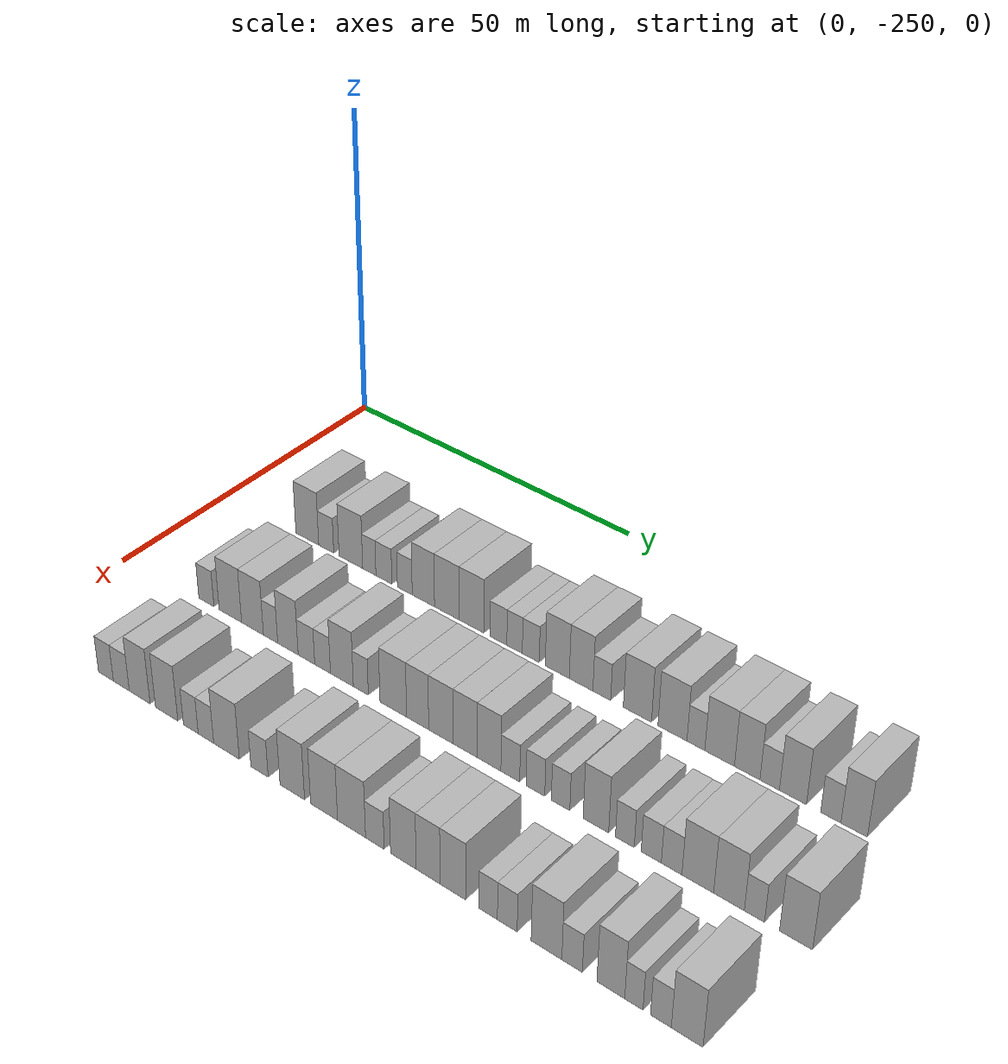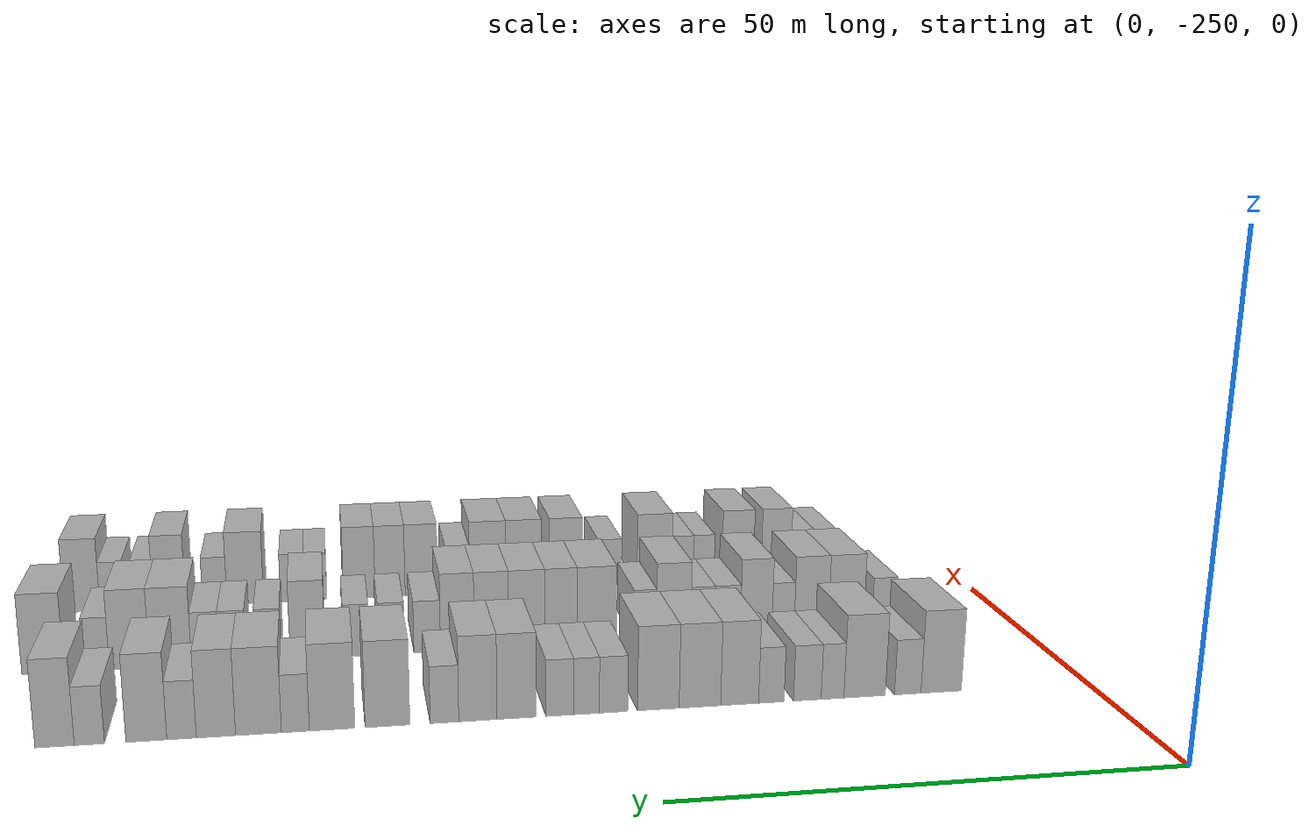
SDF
<sdf version="1.6">
 <world name="default">
  <model name="building_1">
   <static>1</static>
   <pose>25.0000 -233.8101 0 0.000000 0.000000 0.000000</pose>
   <link name="link">
    <pose>0 0 4.50 0 0 0</pose>
    <collision name="collision"><geometry><box><size>10.0000 4.3798 9.0000</size></box></geometry></collision>
    <visual name="visual">
     <cast_shadows>0</cast_shadows>
     <geometry><box><size>10.0000 4.3798 9.0000</size></box></geometry>
     <material>
      <script>
       <uri>model://HANNAS_wall/materials/scripts</uri>
       <uri>model://HANNAS_wall/materials/textures</uri>
       <name>vrc/HANNAS_wall</name>
      </script>
     </material>
    </visual>
   </link>
  </model>
  <model name="building_2">
   <static>1</static>
   <pose>25.0000 -230.1904 0 0.000000 0.000000 0.000000</pose>
   <link name="link">
    <pose>0 0 3.00 0 0 0</pose>
    <collision name="collision"><geometry><box><size>10.0000 2.8597 6.0000</size></box></geometry></collision>
    <visual name="visual">
     <cast_shadows>0</cast_shadows>
     <geometry><box><size>10.0000 2.8597 6.0000</size></box></geometry>
     <material>
      <script>
       <uri>model://HANNAS_wall/materials/scripts</uri>
       <uri>model://HANNAS_wall/materials/textures</uri>
       <name>vrc/HANNAS_wall</name>
      </script>
     </material>
    </visual>
   </link>
  </model>
  <model name="building_3">
   <static>1</static>
   <pose>25.0000 -225.5455 0 0.000000 0.000000 0.000000</pose>
   <link name="link">
    <pose>0 0 4.50 0 0 0</pose>
    <collision name="collision"><geometry><box><size>10.0000 4.4301 9.0000</size></box></geometry></collision>
    <visual name="visual">
     <cast_shadows>0</cast_shadows>
     <geometry><box><size>10.0000 4.4301 9.0000</size></box></geometry>
     <material>
      <script>
       <uri>model://HANNAS_wall/materials/scripts</uri>
       <uri>model://HANNAS_wall/materials/textures</uri>
       <name>vrc/HANNAS_wall</name>
      </script>
     </material>
    </visual>
   </link>
  </model>
  <model name="building_4">
   <static>1</static>
   <pose>25.0000 -222.1152 0 0.000000 0.000000 0.000000</pose>
   <link name="link">
    <pose>0 0 3.00 0 0 0</pose>
    <collision name="collision"><geometry><box><size>10.0000 2.4304 6.0000</size></box></geometry></collision>
    <visual name="visual">
     <cast_shadows>0</cast_shadows>
     <geometry><box><size>10.0000 2.4304 6.0000</size></box></geometry>
     <material>
      <script>
       <uri>model://HANNAS_wall/materials/scripts</uri>
       <uri>model://HANNAS_wall/materials/textures</uri>
       <name>vrc/HANNAS_wall</name>
      </script>
     </material>
    </visual>
   </link>
  </model>
  <model name="building_5">
   <static>1</static>
   <pose>25.0000 -219.4373 0 0.000000 0.000000 0.000000</pose>
   <link name="link">
    <pose>0 0 3.00 0 0 0</pose>
    <collision name="collision"><geometry><box><size>10.0000 2.9253 6.0000</size></box></geometry></collision>
    <visual name="visual">
     <cast_shadows>0</cast_shadows>
     <geometry><box><size>10.0000 2.9253 6.0000</size></box></geometry>
     <material>
      <script>
       <uri>model://HANNAS_wall/materials/scripts</uri>
       <uri>model://HANNAS_wall/materials/textures</uri>
       <name>vrc/HANNAS_wall</name>
      </script>
     </material>
    </visual>
   </link>
  </model>
  <model name="building_6">
   <static>1</static>
   <pose>25.0000 -215.6372 0 0.000000 0.000000 0.000000</pose>
   <link name="link">
    <pose>0 0 3.00 0 0 0</pose>
    <collision name="collision"><geometry><box><size>10.0000 2.6748 6.0000</size></box></geometry></collision>
    <visual name="visual">
     <cast_shadows>0</cast_shadows>
     <geometry><box><size>10.0000 2.6748 6.0000</size></box></geometry>
     <material>
      <script>
       <uri>model://HANNAS_wall/materials/scripts</uri>
       <uri>model://HANNAS_wall/materials/textures</uri>
       <name>vrc/HANNAS_wall</name>
      </script>
     </material>
    </visual>
   </link>
  </model>
  <model name="building_7">
   <static>1</static>
   <pose>25.0000 -212.3114 0 0.000000 0.000000 0.000000</pose>
   <link name="link">
    <pose>0 0 4.50 0 0 0</pose>
    <collision name="collision"><geometry><box><size>10.0000 3.9768 9.0000</size></box></geometry></collision>
    <visual name="visual">
     <cast_shadows>0</cast_shadows>
     <geometry><box><size>10.0000 3.9768 9.0000</size></box></geometry>
     <material>
      <script>
       <uri>model://HANNAS_wall/materials/scripts</uri>
       <uri>model://HANNAS_wall/materials/textures</uri>
       <name>vrc/HANNAS_wall</name>
      </script>
     </material>
    </visual>
   </link>
  </model>
  <model name="building_8">
   <static>1</static>
   <pose>25.0000 -208.1650 0 0.000000 0.000000 0.000000</pose>
   <link name="link">
    <pose>0 0 4.50 0 0 0</pose>
    <collision name="collision"><geometry><box><size>10.0000 4.3161 9.0000</size></box></geometry></collision>
    <visual name="visual">
     <cast_shadows>0</cast_shadows>
     <geometry><box><size>10.0000 4.3161 9.0000</size></box></geometry>
     <material>
      <script>
       <uri>model://HANNAS_wall/materials/scripts</uri>
       <uri>model://HANNAS_wall/materials/textures</uri>
       <name>vrc/HANNAS_wall</name>
      </script>
     </material>
    </visual>
   </link>
  </model>
  <model name="building_9">
   <static>1</static>
   <pose>25.0000 -203.8633 0 0.000000 0.000000 0.000000</pose>
   <link name="link">
    <pose>0 0 4.50 0 0 0</pose>
    <collision name="collision"><geometry><box><size>10.0000 4.2874 9.0000</size></box></geometry></collision>
    <visual name="visual">
     <cast_shadows>0</cast_shadows>
     <geometry><box><size>10.0000 4.2874 9.0000</size></box></geometry>
     <material>
      <script>
       <uri>model://HANNAS_wall/materials/scripts</uri>
       <uri>model://HANNAS_wall/materials/textures</uri>
       <name>vrc/HANNAS_wall</name>
      </script>
     </material>
    </visual>
   </link>
  </model>
  <model name="building_10">
   <static>1</static>
   <pose>25.0000 -199.2689 0 0.000000 0.000000 0.000000</pose>
   <link name="link">
    <pose>0 0 3.00 0 0 0</pose>
    <collision name="collision"><geometry><box><size>10.0000 2.9013 6.0000</size></box></geometry></collision>
    <visual name="visual">
     <cast_shadows>0</cast_shadows>
     <geometry><box><size>10.0000 2.9013 6.0000</size></box></geometry>
     <material>
      <script>
       <uri>model://HANNAS_wall/materials/scripts</uri>
       <uri>model://HANNAS_wall/materials/textures</uri>
       <name>vrc/HANNAS_wall</name>
      </script>
     </material>
    </visual>
   </link>
  </model>
  <model name="building_11">
   <static>1</static>
   <pose>25.0000 -196.5179 0 0.000000 0.000000 0.000000</pose>
   <link name="link">
    <pose>0 0 3.00 0 0 0</pose>
    <collision name="collision"><geometry><box><size>10.0000 2.6006 6.0000</size></box></geometry></collision>
    <visual name="visual">
     <cast_shadows>0</cast_shadows>
     <geometry><box><size>10.0000 2.6006 6.0000</size></box></geometry>
     <material>
      <script>
       <uri>model://HANNAS_wall/materials/scripts</uri>
       <uri>model://HANNAS_wall/materials/textures</uri>
       <name>vrc/HANNAS_wall</name>
      </script>
     </material>
    </visual>
   </link>
  </model>
  <model name="building_12">
   <static>1</static>
   <pose>25.0000 -193.8118 0 0.000000 0.000000 0.000000</pose>
   <link name="link">
    <pose>0 0 3.00 0 0 0</pose>
    <collision name="collision"><geometry><box><size>10.0000 2.8117 6.0000</size></box></geometry></collision>
    <visual name="visual">
     <cast_shadows>0</cast_shadows>
     <geometry><box><size>10.0000 2.8117 6.0000</size></box></geometry>
     <material>
      <script>
       <uri>model://HANNAS_wall/materials/scripts</uri>
       <uri>model://HANNAS_wall/materials/textures</uri>
       <name>vrc/HANNAS_wall</name>
      </script>
     </material>
    </visual>
   </link>
  </model>
  <model name="building_13">
   <static>1</static>
   <pose>25.0000 -189.4417 0 0.000000 0.000000 0.000000</pose>
   <link name="link">
    <pose>0 0 4.50 0 0 0</pose>
    <collision name="collision"><geometry><box><size>10.0000 3.9283 9.0000</size></box></geometry></collision>
    <visual name="visual">
     <cast_shadows>0</cast_shadows>
     <geometry><box><size>10.0000 3.9283 9.0000</size></box></geometry>
     <material>
      <script>
       <uri>model://HANNAS_wall/materials/scripts</uri>
       <uri>model://HANNAS_wall/materials/textures</uri>
       <name>vrc/HANNAS_wall</name>
      </script>
     </material>
    </visual>
   </link>
  </model>
  <model name="building_14">
   <static>1</static>
   <pose>25.0000 -185.5741 0 0.000000 0.000000 0.000000</pose>
   <link name="link">
    <pose>0 0 4.50 0 0 0</pose>
    <collision name="collision"><geometry><box><size>10.0000 3.8069 9.0000</size></box></geometry></collision>
    <visual name="visual">
     <cast_shadows>0</cast_shadows>
     <geometry><box><size>10.0000 3.8069 9.0000</size></box></geometry>
     <material>
      <script>
       <uri>model://HANNAS_wall/materials/scripts</uri>
       <uri>model://HANNAS_wall/materials/textures</uri>
       <name>vrc/HANNAS_wall</name>
      </script>
     </material>
    </visual>
   </link>
  </model>
  <model name="building_15">
   <static>1</static>
   <pose>25.0000 -182.2556 0 0.000000 0.000000 0.000000</pose>
   <link name="link">
    <pose>0 0 3.00 0 0 0</pose>
    <collision name="collision"><geometry><box><size>10.0000 2.8301 6.0000</size></box></geometry></collision>
    <visual name="visual">
     <cast_shadows>0</cast_shadows>
     <geometry><box><size>10.0000 2.8301 6.0000</size></box></geometry>
     <material>
      <script>
       <uri>model://HANNAS_wall/materials/scripts</uri>
       <uri>model://HANNAS_wall/materials/textures</uri>
       <name>vrc/HANNAS_wall</name>
      </script>
     </material>
    </visual>
   </link>
  </model>
  <model name="building_16">
   <static>1</static>
   <pose>25.0000 -176.6451 0 0.000000 0.000000 0.000000</pose>
   <link name="link">
    <pose>0 0 4.50 0 0 0</pose>
    <collision name="collision"><geometry><box><size>10.0000 4.3909 9.0000</size></box></geometry></collision>
    <visual name="visual">
     <cast_shadows>0</cast_shadows>
     <geometry><box><size>10.0000 4.3909 9.0000</size></box></geometry>
     <material>
      <script>
       <uri>model://HANNAS_wall/materials/scripts</uri>
       <uri>model://HANNAS_wall/materials/textures</uri>
       <name>vrc/HANNAS_wall</name>
      </script>
     </material>
    </visual>
   </link>
  </model>
  <model name="building_17">
   <static>1</static>
   <pose>25.0000 -171.2422 0 0.000000 0.000000 0.000000</pose>
   <link name="link">
    <pose>0 0 4.50 0 0 0</pose>
    <collision name="collision"><geometry><box><size>10.0000 4.4151 9.0000</size></box></geometry></collision>
    <visual name="visual">
     <cast_shadows>0</cast_shadows>
     <geometry><box><size>10.0000 4.4151 9.0000</size></box></geometry>
     <material>
      <script>
       <uri>model://HANNAS_wall/materials/scripts</uri>
       <uri>model://HANNAS_wall/materials/textures</uri>
       <name>vrc/HANNAS_wall</name>
      </script>
     </material>
    </visual>
   </link>
  </model>
  <model name="building_18">
   <static>1</static>
   <pose>25.0000 -167.6906 0 0.000000 0.000000 0.000000</pose>
   <link name="link">
    <pose>0 0 3.00 0 0 0</pose>
    <collision name="collision"><geometry><box><size>10.0000 2.6881 6.0000</size></box></geometry></collision>
    <visual name="visual">
     <cast_shadows>0</cast_shadows>
     <geometry><box><size>10.0000 2.6881 6.0000</size></box></geometry>
     <material>
      <script>
       <uri>model://HANNAS_wall/materials/scripts</uri>
       <uri>model://HANNAS_wall/materials/textures</uri>
       <name>vrc/HANNAS_wall</name>
      </script>
     </material>
    </visual>
   </link>
  </model>
  <model name="building_19">
   <static>1</static>
   <pose>25.0000 -164.1504 0 0.000000 0.000000 0.000000</pose>
   <link name="link">
    <pose>0 0 4.50 0 0 0</pose>
    <collision name="collision"><geometry><box><size>10.0000 4.3922 9.0000</size></box></geometry></collision>
    <visual name="visual">
     <cast_shadows>0</cast_shadows>
     <geometry><box><size>10.0000 4.3922 9.0000</size></box></geometry>
     <material>
      <script>
       <uri>model://HANNAS_wall/materials/scripts</uri>
       <uri>model://HANNAS_wall/materials/textures</uri>
       <name>vrc/HANNAS_wall</name>
      </script>
     </material>
    </visual>
   </link>
  </model>
  <model name="building_20">
   <static>1</static>
   <pose>25.0000 -160.0922 0 0.000000 0.000000 0.000000</pose>
   <link name="link">
    <pose>0 0 4.50 0 0 0</pose>
    <collision name="collision"><geometry><box><size>10.0000 3.7243 9.0000</size></box></geometry></collision>
    <visual name="visual">
     <cast_shadows>0</cast_shadows>
     <geometry><box><size>10.0000 3.7243 9.0000</size></box></geometry>
     <material>
      <script>
       <uri>model://HANNAS_wall/materials/scripts</uri>
       <uri>model://HANNAS_wall/materials/textures</uri>
       <name>vrc/HANNAS_wall</name>
      </script>
     </material>
    </visual>
   </link>
  </model>
  <model name="building_21">
   <static>1</static>
   <pose>25.0000 -156.8335 0 0.000000 0.000000 0.000000</pose>
   <link name="link">
    <pose>0 0 3.00 0 0 0</pose>
    <collision name="collision"><geometry><box><size>10.0000 2.7931 6.0000</size></box></geometry></collision>
    <visual name="visual">
     <cast_shadows>0</cast_shadows>
     <geometry><box><size>10.0000 2.7931 6.0000</size></box></geometry>
     <material>
      <script>
       <uri>model://HANNAS_wall/materials/scripts</uri>
       <uri>model://HANNAS_wall/materials/textures</uri>
       <name>vrc/HANNAS_wall</name>
      </script>
     </material>
    </visual>
   </link>
  </model>
  <model name="building_22">
   <static>1</static>
   <pose>25.0000 -153.5188 0 0.000000 0.000000 0.000000</pose>
   <link name="link">
    <pose>0 0 4.50 0 0 0</pose>
    <collision name="collision"><geometry><box><size>10.0000 3.8362 9.0000</size></box></geometry></collision>
    <visual name="visual">
     <cast_shadows>0</cast_shadows>
     <geometry><box><size>10.0000 3.8362 9.0000</size></box></geometry>
     <material>
      <script>
       <uri>model://HANNAS_wall/materials/scripts</uri>
       <uri>model://HANNAS_wall/materials/textures</uri>
       <name>vrc/HANNAS_wall</name>
      </script>
     </material>
    </visual>
   </link>
  </model>
  <model name="building_23">
   <static>1</static>
   <pose>25.0000 -148.1975 0 0.000000 0.000000 0.000000</pose>
   <link name="link">
    <pose>0 0 3.00 0 0 0</pose>
    <collision name="collision"><geometry><box><size>10.0000 2.8065 6.0000</size></box></geometry></collision>
    <visual name="visual">
     <cast_shadows>0</cast_shadows>
     <geometry><box><size>10.0000 2.8065 6.0000</size></box></geometry>
     <material>
      <script>
       <uri>model://HANNAS_wall/materials/scripts</uri>
       <uri>model://HANNAS_wall/materials/textures</uri>
       <name>vrc/HANNAS_wall</name>
      </script>
     </material>
    </visual>
   </link>
  </model>
  <model name="building_24">
   <static>1</static>
   <pose>25.0000 -144.9755 0 0.000000 0.000000 0.000000</pose>
   <link name="link">
    <pose>0 0 4.50 0 0 0</pose>
    <collision name="collision"><geometry><box><size>10.0000 3.6374 9.0000</size></box></geometry></collision>
    <visual name="visual">
     <cast_shadows>0</cast_shadows>
     <geometry><box><size>10.0000 3.6374 9.0000</size></box></geometry>
     <material>
      <script>
       <uri>model://HANNAS_wall/materials/scripts</uri>
       <uri>model://HANNAS_wall/materials/textures</uri>
       <name>vrc/HANNAS_wall</name>
      </script>
     </material>
    </visual>
   </link>
  </model>
  <model name="building_122">
   <static>1</static>
   <pose>44.0000 -234.5549 0 0.000000 0.000000 0.000000</pose>
   <link name="link">
    <pose>0 0 3.00 0 0 0</pose>
    <collision name="collision"><geometry><box><size>10.0000 2.8903 6.0000</size></box></geometry></collision>
    <visual name="visual">
     <cast_shadows>0</cast_shadows>
     <geometry><box><size>10.0000 2.8903 6.0000</size></box></geometry>
     <material>
      <script>
       <uri>model://HANNAS_wall/materials/scripts</uri>
       <uri>model://HANNAS_wall/materials/textures</uri>
       <name>vrc/HANNAS_wall</name>
      </script>
     </material>
    </visual>
   </link>
  </model>
  <model name="building_123">
   <static>1</static>
   <pose>44.0000 -229.9972 0 0.000000 0.000000 0.000000</pose>
   <link name="link">
    <pose>0 0 4.50 0 0 0</pose>
    <collision name="collision"><geometry><box><size>10.0000 4.2250 9.0000</size></box></geometry></collision>
    <visual name="visual">
     <cast_shadows>0</cast_shadows>
     <geometry><box><size>10.0000 4.2250 9.0000</size></box></geometry>
     <material>
      <script>
       <uri>model://HANNAS_wall/materials/scripts</uri>
       <uri>model://HANNAS_wall/materials/textures</uri>
       <name>vrc/HANNAS_wall</name>
      </script>
     </material>
    </visual>
   </link>
  </model>
  <model name="building_124">
   <static>1</static>
   <pose>44.0000 -225.8586 0 0.000000 0.000000 0.000000</pose>
   <link name="link">
    <pose>0 0 4.50 0 0 0</pose>
    <collision name="collision"><geometry><box><size>10.0000 4.0521 9.0000</size></box></geometry></collision>
    <visual name="visual">
     <cast_shadows>0</cast_shadows>
     <geometry><box><size>10.0000 4.0521 9.0000</size></box></geometry>
     <material>
      <script>
       <uri>model://HANNAS_wall/materials/scripts</uri>
       <uri>model://HANNAS_wall/materials/textures</uri>
       <name>vrc/HANNAS_wall</name>
      </script>
     </material>
    </visual>
   </link>
  </model>
  <model name="building_125">
   <static>1</static>
   <pose>44.0000 -222.5237 0 0.000000 0.000000 0.000000</pose>
   <link name="link">
    <pose>0 0 3.00 0 0 0</pose>
    <collision name="collision"><geometry><box><size>10.0000 2.6177 6.0000</size></box></geometry></collision>
    <visual name="visual">
     <cast_shadows>0</cast_shadows>
     <geometry><box><size>10.0000 2.6177 6.0000</size></box></geometry>
     <material>
      <script>
       <uri>model://HANNAS_wall/materials/scripts</uri>
       <uri>model://HANNAS_wall/materials/textures</uri>
       <name>vrc/HANNAS_wall</name>
      </script>
     </material>
    </visual>
   </link>
  </model>
  <model name="building_126">
   <static>1</static>
   <pose>44.0000 -219.3623 0 0.000000 0.000000 0.000000</pose>
   <link name="link">
    <pose>0 0 4.50 0 0 0</pose>
    <collision name="collision"><geometry><box><size>10.0000 3.7052 9.0000</size></box></geometry></collision>
    <visual name="visual">
     <cast_shadows>0</cast_shadows>
     <geometry><box><size>10.0000 3.7052 9.0000</size></box></geometry>
     <material>
      <script>
       <uri>model://HANNAS_wall/materials/scripts</uri>
       <uri>model://HANNAS_wall/materials/textures</uri>
       <name>vrc/HANNAS_wall</name>
      </script>
     </material>
    </visual>
   </link>
  </model>
  <model name="building_127">
   <static>1</static>
   <pose>44.0000 -216.0281 0 0.000000 0.000000 0.000000</pose>
   <link name="link">
    <pose>0 0 3.00 0 0 0</pose>
    <collision name="collision"><geometry><box><size>10.0000 2.9630 6.0000</size></box></geometry></collision>
    <visual name="visual">
     <cast_shadows>0</cast_shadows>
     <geometry><box><size>10.0000 2.9630 6.0000</size></box></geometry>
     <material>
      <script>
       <uri>model://HANNAS_wall/materials/scripts</uri>
       <uri>model://HANNAS_wall/materials/textures</uri>
       <name>vrc/HANNAS_wall</name>
      </script>
     </material>
    </visual>
   </link>
  </model>
  <model name="building_128">
   <static>1</static>
   <pose>44.0000 -213.1535 0 0.000000 0.000000 0.000000</pose>
   <link name="link">
    <pose>0 0 3.00 0 0 0</pose>
    <collision name="collision"><geometry><box><size>10.0000 2.7863 6.0000</size></box></geometry></collision>
    <visual name="visual">
     <cast_shadows>0</cast_shadows>
     <geometry><box><size>10.0000 2.7863 6.0000</size></box></geometry>
     <material>
      <script>
       <uri>model://HANNAS_wall/materials/scripts</uri>
       <uri>model://HANNAS_wall/materials/textures</uri>
       <name>vrc/HANNAS_wall</name>
      </script>
     </material>
    </visual>
   </link>
  </model>
  <model name="building_129">
   <static>1</static>
   <pose>44.0000 -209.7621 0 0.000000 0.000000 0.000000</pose>
   <link name="link">
    <pose>0 0 4.50 0 0 0</pose>
    <collision name="collision"><geometry><box><size>10.0000 3.9966 9.0000</size></box></geometry></collision>
    <visual name="visual">
     <cast_shadows>0</cast_shadows>
     <geometry><box><size>10.0000 3.9966 9.0000</size></box></geometry>
     <material>
      <script>
       <uri>model://HANNAS_wall/materials/scripts</uri>
       <uri>model://HANNAS_wall/materials/textures</uri>
       <name>vrc/HANNAS_wall</name>
      </script>
     </material>
    </visual>
   </link>
  </model>
  <model name="building_130">
   <static>1</static>
   <pose>44.0000 -206.4711 0 0.000000 0.000000 0.000000</pose>
   <link name="link">
    <pose>0 0 3.00 0 0 0</pose>
    <collision name="collision"><geometry><box><size>10.0000 2.5854 6.0000</size></box></geometry></collision>
    <visual name="visual">
     <cast_shadows>0</cast_shadows>
     <geometry><box><size>10.0000 2.5854 6.0000</size></box></geometry>
     <material>
      <script>
       <uri>model://HANNAS_wall/materials/scripts</uri>
       <uri>model://HANNAS_wall/materials/textures</uri>
       <name>vrc/HANNAS_wall</name>
      </script>
     </material>
    </visual>
   </link>
  </model>
  <model name="building_131">
   <static>1</static>
   <pose>44.0000 -200.9347 0 0.000000 0.000000 0.000000</pose>
   <link name="link">
    <pose>0 0 4.50 0 0 0</pose>
    <collision name="collision"><geometry><box><size>10.0000 4.4874 9.0000</size></box></geometry></collision>
    <visual name="visual">
     <cast_shadows>0</cast_shadows>
     <geometry><box><size>10.0000 4.4874 9.0000</size></box></geometry>
     <material>
      <script>
       <uri>model://HANNAS_wall/materials/scripts</uri>
       <uri>model://HANNAS_wall/materials/textures</uri>
       <name>vrc/HANNAS_wall</name>
      </script>
     </material>
    </visual>
   </link>
  </model>
  <model name="building_132">
   <static>1</static>
   <pose>44.0000 -196.8589 0 0.000000 0.000000 0.000000</pose>
   <link name="link">
    <pose>0 0 4.50 0 0 0</pose>
    <collision name="collision"><geometry><box><size>10.0000 3.6641 9.0000</size></box></geometry></collision>
    <visual name="visual">
     <cast_shadows>0</cast_shadows>
     <geometry><box><size>10.0000 3.6641 9.0000</size></box></geometry>
     <material>
      <script>
       <uri>model://HANNAS_wall/materials/scripts</uri>
       <uri>model://HANNAS_wall/materials/textures</uri>
       <name>vrc/HANNAS_wall</name>
      </script>
     </material>
    </visual>
   </link>
  </model>
  <model name="building_133">
   <static>1</static>
   <pose>44.0000 -193.0151 0 0.000000 0.000000 0.000000</pose>
   <link name="link">
    <pose>0 0 4.50 0 0 0</pose>
    <collision name="collision"><geometry><box><size>10.0000 4.0234 9.0000</size></box></geometry></collision>
    <visual name="visual">
     <cast_shadows>0</cast_shadows>
     <geometry><box><size>10.0000 4.0234 9.0000</size></box></geometry>
     <material>
      <script>
       <uri>model://HANNAS_wall/materials/scripts</uri>
       <uri>model://HANNAS_wall/materials/textures</uri>
       <name>vrc/HANNAS_wall</name>
      </script>
     </material>
    </visual>
   </link>
  </model>
  <model name="building_134">
   <static>1</static>
   <pose>44.0000 -189.0742 0 0.000000 0.000000 0.000000</pose>
   <link name="link">
    <pose>0 0 4.50 0 0 0</pose>
    <collision name="collision"><geometry><box><size>10.0000 3.8585 9.0000</size></box></geometry></collision>
    <visual name="visual">
     <cast_shadows>0</cast_shadows>
     <geometry><box><size>10.0000 3.8585 9.0000</size></box></geometry>
     <material>
      <script>
       <uri>model://HANNAS_wall/materials/scripts</uri>
       <uri>model://HANNAS_wall/materials/textures</uri>
       <name>vrc/HANNAS_wall</name>
      </script>
     </material>
    </visual>
   </link>
  </model>
  <model name="building_135">
   <static>1</static>
   <pose>44.0000 -185.2685 0 0.000000 0.000000 0.000000</pose>
   <link name="link">
    <pose>0 0 4.50 0 0 0</pose>
    <collision name="collision"><geometry><box><size>10.0000 3.7528 9.0000</size></box></geometry></collision>
    <visual name="visual">
     <cast_shadows>0</cast_shadows>
     <geometry><box><size>10.0000 3.7528 9.0000</size></box></geometry>
     <material>
      <script>
       <uri>model://HANNAS_wall/materials/scripts</uri>
       <uri>model://HANNAS_wall/materials/textures</uri>
       <name>vrc/HANNAS_wall</name>
      </script>
     </material>
    </visual>
   </link>
  </model>
  <model name="building_136">
   <static>1</static>
   <pose>44.0000 -181.9226 0 0.000000 0.000000 0.000000</pose>
   <link name="link">
    <pose>0 0 3.00 0 0 0</pose>
    <collision name="collision"><geometry><box><size>10.0000 2.9390 6.0000</size></box></geometry></collision>
    <visual name="visual">
     <cast_shadows>0</cast_shadows>
     <geometry><box><size>10.0000 2.9390 6.0000</size></box></geometry>
     <material>
      <script>
       <uri>model://HANNAS_wall/materials/scripts</uri>
       <uri>model://HANNAS_wall/materials/textures</uri>
       <name>vrc/HANNAS_wall</name>
      </script>
     </material>
    </visual>
   </link>
  </model>
  <model name="building_137">
   <static>1</static>
   <pose>44.0000 -178.0191 0 0.000000 0.000000 0.000000</pose>
   <link name="link">
    <pose>0 0 3.00 0 0 0</pose>
    <collision name="collision"><geometry><box><size>10.0000 2.8681 6.0000</size></box></geometry></collision>
    <visual name="visual">
     <cast_shadows>0</cast_shadows>
     <geometry><box><size>10.0000 2.8681 6.0000</size></box></geometry>
     <material>
      <script>
       <uri>model://HANNAS_wall/materials/scripts</uri>
       <uri>model://HANNAS_wall/materials/textures</uri>
       <name>vrc/HANNAS_wall</name>
      </script>
     </material>
    </visual>
   </link>
  </model>
  <model name="building_138">
   <static>1</static>
   <pose>44.0000 -174.1809 0 0.000000 0.000000 0.000000</pose>
   <link name="link">
    <pose>0 0 3.00 0 0 0</pose>
    <collision name="collision"><geometry><box><size>10.0000 2.8083 6.0000</size></box></geometry></collision>
    <visual name="visual">
     <cast_shadows>0</cast_shadows>
     <geometry><box><size>10.0000 2.8083 6.0000</size></box></geometry>
     <material>
      <script>
       <uri>model://HANNAS_wall/materials/scripts</uri>
       <uri>model://HANNAS_wall/materials/textures</uri>
       <name>vrc/HANNAS_wall</name>
      </script>
     </material>
    </visual>
   </link>
  </model>
  <model name="building_139">
   <static>1</static>
   <pose>44.0000 -168.8858 0 0.000000 0.000000 0.000000</pose>
   <link name="link">
    <pose>0 0 4.50 0 0 0</pose>
    <collision name="collision"><geometry><box><size>10.0000 3.7818 9.0000</size></box></geometry></collision>
    <visual name="visual">
     <cast_shadows>0</cast_shadows>
     <geometry><box><size>10.0000 3.7818 9.0000</size></box></geometry>
     <material>
      <script>
       <uri>model://HANNAS_wall/materials/scripts</uri>
       <uri>model://HANNAS_wall/materials/textures</uri>
       <name>vrc/HANNAS_wall</name>
      </script>
     </material>
    </visual>
   </link>
  </model>
  <model name="building_140">
   <static>1</static>
   <pose>44.0000 -164.6226 0 0.000000 0.000000 0.000000</pose>
   <link name="link">
    <pose>0 0 3.00 0 0 0</pose>
    <collision name="collision"><geometry><box><size>10.0000 2.7446 6.0000</size></box></geometry></collision>
    <visual name="visual">
     <cast_shadows>0</cast_shadows>
     <geometry><box><size>10.0000 2.7446 6.0000</size></box></geometry>
     <material>
      <script>
       <uri>model://HANNAS_wall/materials/scripts</uri>
       <uri>model://HANNAS_wall/materials/textures</uri>
       <name>vrc/HANNAS_wall</name>
      </script>
     </material>
    </visual>
   </link>
  </model>
  <model name="building_141">
   <static>1</static>
   <pose>44.0000 -160.8085 0 0.000000 0.000000 0.000000</pose>
   <link name="link">
    <pose>0 0 3.00 0 0 0</pose>
    <collision name="collision"><geometry><box><size>10.0000 2.8837 6.0000</size></box></geometry></collision>
    <visual name="visual">
     <cast_shadows>0</cast_shadows>
     <geometry><box><size>10.0000 2.8837 6.0000</size></box></geometry>
     <material>
      <script>
       <uri>model://HANNAS_wall/materials/scripts</uri>
       <uri>model://HANNAS_wall/materials/textures</uri>
       <name>vrc/HANNAS_wall</name>
      </script>
     </material>
    </visual>
   </link>
  </model>
  <model name="building_142">
   <static>1</static>
   <pose>44.0000 -157.9084 0 0.000000 0.000000 0.000000</pose>
   <link name="link">
    <pose>0 0 3.00 0 0 0</pose>
    <collision name="collision"><geometry><box><size>10.0000 2.9166 6.0000</size></box></geometry></collision>
    <visual name="visual">
     <cast_shadows>0</cast_shadows>
     <geometry><box><size>10.0000 2.9166 6.0000</size></box></geometry>
     <material>
      <script>
       <uri>model://HANNAS_wall/materials/scripts</uri>
       <uri>model://HANNAS_wall/materials/textures</uri>
       <name>vrc/HANNAS_wall</name>
      </script>
     </material>
    </visual>
   </link>
  </model>
  <model name="building_143">
   <static>1</static>
   <pose>44.0000 -154.2385 0 0.000000 0.000000 0.000000</pose>
   <link name="link">
    <pose>0 0 4.50 0 0 0</pose>
    <collision name="collision"><geometry><box><size>10.0000 4.4233 9.0000</size></box></geometry></collision>
    <visual name="visual">
     <cast_shadows>0</cast_shadows>
     <geometry><box><size>10.0000 4.4233 9.0000</size></box></geometry>
     <material>
      <script>
       <uri>model://HANNAS_wall/materials/scripts</uri>
       <uri>model://HANNAS_wall/materials/textures</uri>
       <name>vrc/HANNAS_wall</name>
      </script>
     </material>
    </visual>
   </link>
  </model>
  <model name="building_144">
   <static>1</static>
   <pose>44.0000 -149.9236 0 0.000000 0.000000 0.000000</pose>
   <link name="link">
    <pose>0 0 4.50 0 0 0</pose>
    <collision name="collision"><geometry><box><size>10.0000 4.2064 9.0000</size></box></geometry></collision>
    <visual name="visual">
     <cast_shadows>0</cast_shadows>
     <geometry><box><size>10.0000 4.2064 9.0000</size></box></geometry>
     <material>
      <script>
       <uri>model://HANNAS_wall/materials/scripts</uri>
       <uri>model://HANNAS_wall/materials/textures</uri>
       <name>vrc/HANNAS_wall</name>
      </script>
     </material>
    </visual>
   </link>
  </model>
  <model name="building_145">
   <static>1</static>
   <pose>44.0000 -146.4635 0 0.000000 0.000000 0.000000</pose>
   <link name="link">
    <pose>0 0 3.00 0 0 0</pose>
    <collision name="collision"><geometry><box><size>10.0000 2.7138 6.0000</size></box></geometry></collision>
    <visual name="visual">
     <cast_shadows>0</cast_shadows>
     <geometry><box><size>10.0000 2.7138 6.0000</size></box></geometry>
     <material>
      <script>
       <uri>model://HANNAS_wall/materials/scripts</uri>
       <uri>model://HANNAS_wall/materials/textures</uri>
       <name>vrc/HANNAS_wall</name>
      </script>
     </material>
    </visual>
   </link>
  </model>
  <model name="building_146">
   <static>1</static>
   <pose>44.0000 -140.9256 0 0.000000 0.000000 0.000000</pose>
   <link name="link">
    <pose>0 0 4.50 0 0 0</pose>
    <collision name="collision"><geometry><box><size>10.0000 4.3620 9.0000</size></box></geometry></collision>
    <visual name="visual">
     <cast_shadows>0</cast_shadows>
     <geometry><box><size>10.0000 4.3620 9.0000</size></box></geometry>
     <material>
      <script>
       <uri>model://HANNAS_wall/materials/scripts</uri>
       <uri>model://HANNAS_wall/materials/textures</uri>
       <name>vrc/HANNAS_wall</name>
      </script>
     </material>
    </visual>
   </link>
  </model>
  <model name="building_241">
   <static>1</static>
   <pose>63.0000 -233.5873 0 0.000000 0.000000 0.000000</pose>
   <link name="link">
    <pose>0 0 3.00 0 0 0</pose>
    <collision name="collision"><geometry><box><size>10.0000 2.8255 6.0000</size></box></geometry></collision>
    <visual name="visual">
     <cast_shadows>0</cast_shadows>
     <geometry><box><size>10.0000 2.8255 6.0000</size></box></geometry>
     <material>
      <script>
       <uri>model://HANNAS_wall/materials/scripts</uri>
       <uri>model://HANNAS_wall/materials/textures</uri>
       <name>vrc/HANNAS_wall</name>
      </script>
     </material>
    </visual>
   </link>
  </model>
  <model name="building_242">
   <static>1</static>
   <pose>63.0000 -230.6768 0 0.000000 0.000000 0.000000</pose>
   <link name="link">
    <pose>0 0 3.00 0 0 0</pose>
    <collision name="collision"><geometry><box><size>10.0000 2.9954 6.0000</size></box></geometry></collision>
    <visual name="visual">
     <cast_shadows>0</cast_shadows>
     <geometry><box><size>10.0000 2.9954 6.0000</size></box></geometry>
     <material>
      <script>
       <uri>model://HANNAS_wall/materials/scripts</uri>
       <uri>model://HANNAS_wall/materials/textures</uri>
       <name>vrc/HANNAS_wall</name>
      </script>
     </material>
    </visual>
   </link>
  </model>
  <model name="building_243">
   <static>1</static>
   <pose>63.0000 -227.2550 0 0.000000 0.000000 0.000000</pose>
   <link name="link">
    <pose>0 0 4.50 0 0 0</pose>
    <collision name="collision"><geometry><box><size>10.0000 3.8483 9.0000</size></box></geometry></collision>
    <visual name="visual">
     <cast_shadows>0</cast_shadows>
     <geometry><box><size>10.0000 3.8483 9.0000</size></box></geometry>
     <material>
      <script>
       <uri>model://HANNAS_wall/materials/scripts</uri>
       <uri>model://HANNAS_wall/materials/textures</uri>
       <name>vrc/HANNAS_wall</name>
      </script>
     </material>
    </visual>
   </link>
  </model>
  <model name="building_244">
   <static>1</static>
   <pose>63.0000 -222.2952 0 0.000000 0.000000 0.000000</pose>
   <link name="link">
    <pose>0 0 4.50 0 0 0</pose>
    <collision name="collision"><geometry><box><size>10.0000 4.0713 9.0000</size></box></geometry></collision>
    <visual name="visual">
     <cast_shadows>0</cast_shadows>
     <geometry><box><size>10.0000 4.0713 9.0000</size></box></geometry>
     <material>
      <script>
       <uri>model://HANNAS_wall/materials/scripts</uri>
       <uri>model://HANNAS_wall/materials/textures</uri>
       <name>vrc/HANNAS_wall</name>
      </script>
     </material>
    </visual>
   </link>
  </model>
  <model name="building_245">
   <static>1</static>
   <pose>63.0000 -217.9370 0 0.000000 0.000000 0.000000</pose>
   <link name="link">
    <pose>0 0 3.00 0 0 0</pose>
    <collision name="collision"><geometry><box><size>10.0000 2.6452 6.0000</size></box></geometry></collision>
    <visual name="visual">
     <cast_shadows>0</cast_shadows>
     <geometry><box><size>10.0000 2.6452 6.0000</size></box></geometry>
     <material>
      <script>
       <uri>model://HANNAS_wall/materials/scripts</uri>
       <uri>model://HANNAS_wall/materials/textures</uri>
       <name>vrc/HANNAS_wall</name>
      </script>
     </material>
    </visual>
   </link>
  </model>
  <model name="building_246">
   <static>1</static>
   <pose>63.0000 -215.2465 0 0.000000 0.000000 0.000000</pose>
   <link name="link">
    <pose>0 0 3.00 0 0 0</pose>
    <collision name="collision"><geometry><box><size>10.0000 2.7359 6.0000</size></box></geometry></collision>
    <visual name="visual">
     <cast_shadows>0</cast_shadows>
     <geometry><box><size>10.0000 2.7359 6.0000</size></box></geometry>
     <material>
      <script>
       <uri>model://HANNAS_wall/materials/scripts</uri>
       <uri>model://HANNAS_wall/materials/textures</uri>
       <name>vrc/HANNAS_wall</name>
      </script>
     </material>
    </visual>
   </link>
  </model>
  <model name="building_247">
   <static>1</static>
   <pose>63.0000 -211.6435 0 0.000000 0.000000 0.000000</pose>
   <link name="link">
    <pose>0 0 4.50 0 0 0</pose>
    <collision name="collision"><geometry><box><size>10.0000 4.4700 9.0000</size></box></geometry></collision>
    <visual name="visual">
     <cast_shadows>0</cast_shadows>
     <geometry><box><size>10.0000 4.4700 9.0000</size></box></geometry>
     <material>
      <script>
       <uri>model://HANNAS_wall/materials/scripts</uri>
       <uri>model://HANNAS_wall/materials/textures</uri>
       <name>vrc/HANNAS_wall</name>
      </script>
     </material>
    </visual>
   </link>
  </model>
  <model name="building_248">
   <static>1</static>
   <pose>63.0000 -205.9400 0 0.000000 0.000000 0.000000</pose>
   <link name="link">
    <pose>0 0 3.00 0 0 0</pose>
    <collision name="collision"><geometry><box><size>10.0000 2.9372 6.0000</size></box></geometry></collision>
    <visual name="visual">
     <cast_shadows>0</cast_shadows>
     <geometry><box><size>10.0000 2.9372 6.0000</size></box></geometry>
     <material>
      <script>
       <uri>model://HANNAS_wall/materials/scripts</uri>
       <uri>model://HANNAS_wall/materials/textures</uri>
       <name>vrc/HANNAS_wall</name>
      </script>
     </material>
    </visual>
   </link>
  </model>
  <model name="building_249">
   <static>1</static>
   <pose>63.0000 -200.4217 0 0.000000 0.000000 0.000000</pose>
   <link name="link">
    <pose>0 0 4.50 0 0 0</pose>
    <collision name="collision"><geometry><box><size>10.0000 4.0993 9.0000</size></box></geometry></collision>
    <visual name="visual">
     <cast_shadows>0</cast_shadows>
     <geometry><box><size>10.0000 4.0993 9.0000</size></box></geometry>
     <material>
      <script>
       <uri>model://HANNAS_wall/materials/scripts</uri>
       <uri>model://HANNAS_wall/materials/textures</uri>
       <name>vrc/HANNAS_wall</name>
      </script>
     </material>
    </visual>
   </link>
  </model>
  <model name="building_250">
   <static>1</static>
   <pose>63.0000 -195.1751 0 0.000000 0.000000 0.000000</pose>
   <link name="link">
    <pose>0 0 4.50 0 0 0</pose>
    <collision name="collision"><geometry><box><size>10.0000 4.3939 9.0000</size></box></geometry></collision>
    <visual name="visual">
     <cast_shadows>0</cast_shadows>
     <geometry><box><size>10.0000 4.3939 9.0000</size></box></geometry>
     <material>
      <script>
       <uri>model://HANNAS_wall/materials/scripts</uri>
       <uri>model://HANNAS_wall/materials/textures</uri>
       <name>vrc/HANNAS_wall</name>
      </script>
     </material>
    </visual>
   </link>
  </model>
  <model name="building_251">
   <static>1</static>
   <pose>63.0000 -190.7386 0 0.000000 0.000000 0.000000</pose>
   <link name="link">
    <pose>0 0 4.50 0 0 0</pose>
    <collision name="collision"><geometry><box><size>10.0000 4.4790 9.0000</size></box></geometry></collision>
    <visual name="visual">
     <cast_shadows>0</cast_shadows>
     <geometry><box><size>10.0000 4.4790 9.0000</size></box></geometry>
     <material>
      <script>
       <uri>model://HANNAS_wall/materials/scripts</uri>
       <uri>model://HANNAS_wall/materials/textures</uri>
       <name>vrc/HANNAS_wall</name>
      </script>
     </material>
    </visual>
   </link>
  </model>
  <model name="building_252">
   <static>1</static>
   <pose>63.0000 -187.0338 0 0.000000 0.000000 0.000000</pose>
   <link name="link">
    <pose>0 0 3.00 0 0 0</pose>
    <collision name="collision"><geometry><box><size>10.0000 2.9306 6.0000</size></box></geometry></collision>
    <visual name="visual">
     <cast_shadows>0</cast_shadows>
     <geometry><box><size>10.0000 2.9306 6.0000</size></box></geometry>
     <material>
      <script>
       <uri>model://HANNAS_wall/materials/scripts</uri>
       <uri>model://HANNAS_wall/materials/textures</uri>
       <name>vrc/HANNAS_wall</name>
      </script>
     </material>
    </visual>
   </link>
  </model>
  <model name="building_253">
   <static>1</static>
   <pose>63.0000 -182.5876 0 0.000000 0.000000 0.000000</pose>
   <link name="link">
    <pose>0 0 4.50 0 0 0</pose>
    <collision name="collision"><geometry><box><size>10.0000 3.9620 9.0000</size></box></geometry></collision>
    <visual name="visual">
     <cast_shadows>0</cast_shadows>
     <geometry><box><size>10.0000 3.9620 9.0000</size></box></geometry>
     <material>
      <script>
       <uri>model://HANNAS_wall/materials/scripts</uri>
       <uri>model://HANNAS_wall/materials/textures</uri>
       <name>vrc/HANNAS_wall</name>
      </script>
     </material>
    </visual>
   </link>
  </model>
  <model name="building_254">
   <static>1</static>
   <pose>63.0000 -178.7843 0 0.000000 0.000000 0.000000</pose>
   <link name="link">
    <pose>0 0 4.50 0 0 0</pose>
    <collision name="collision"><geometry><box><size>10.0000 3.6446 9.0000</size></box></geometry></collision>
    <visual name="visual">
     <cast_shadows>0</cast_shadows>
     <geometry><box><size>10.0000 3.6446 9.0000</size></box></geometry>
     <material>
      <script>
       <uri>model://HANNAS_wall/materials/scripts</uri>
       <uri>model://HANNAS_wall/materials/textures</uri>
       <name>vrc/HANNAS_wall</name>
      </script>
     </material>
    </visual>
   </link>
  </model>
  <model name="building_255">
   <static>1</static>
   <pose>63.0000 -175.0543 0 0.000000 0.000000 0.000000</pose>
   <link name="link">
    <pose>0 0 4.50 0 0 0</pose>
    <collision name="collision"><geometry><box><size>10.0000 3.8154 9.0000</size></box></geometry></collision>
    <visual name="visual">
     <cast_shadows>0</cast_shadows>
     <geometry><box><size>10.0000 3.8154 9.0000</size></box></geometry>
     <material>
      <script>
       <uri>model://HANNAS_wall/materials/scripts</uri>
       <uri>model://HANNAS_wall/materials/textures</uri>
       <name>vrc/HANNAS_wall</name>
      </script>
     </material>
    </visual>
   </link>
  </model>
  <model name="building_256">
   <static>1</static>
   <pose>63.0000 -169.8093 0 0.000000 0.000000 0.000000</pose>
   <link name="link">
    <pose>0 0 3.00 0 0 0</pose>
    <collision name="collision"><geometry><box><size>10.0000 2.6745 6.0000</size></box></geometry></collision>
    <visual name="visual">
     <cast_shadows>0</cast_shadows>
     <geometry><box><size>10.0000 2.6745 6.0000</size></box></geometry>
     <material>
      <script>
       <uri>model://HANNAS_wall/materials/scripts</uri>
       <uri>model://HANNAS_wall/materials/textures</uri>
       <name>vrc/HANNAS_wall</name>
      </script>
     </material>
    </visual>
   </link>
  </model>
  <model name="building_257">
   <static>1</static>
   <pose>63.0000 -167.0425 0 0.000000 0.000000 0.000000</pose>
   <link name="link">
    <pose>0 0 3.00 0 0 0</pose>
    <collision name="collision"><geometry><box><size>10.0000 2.8591 6.0000</size></box></geometry></collision>
    <visual name="visual">
     <cast_shadows>0</cast_shadows>
     <geometry><box><size>10.0000 2.8591 6.0000</size></box></geometry>
     <material>
      <script>
       <uri>model://HANNAS_wall/materials/scripts</uri>
       <uri>model://HANNAS_wall/materials/textures</uri>
       <name>vrc/HANNAS_wall</name>
      </script>
     </material>
    </visual>
   </link>
  </model>
  <model name="building_258">
   <static>1</static>
   <pose>63.0000 -161.4459 0 0.000000 0.000000 0.000000</pose>
   <link name="link">
    <pose>0 0 4.50 0 0 0</pose>
    <collision name="collision"><geometry><box><size>10.0000 4.3341 9.0000</size></box></geometry></collision>
    <visual name="visual">
     <cast_shadows>0</cast_shadows>
     <geometry><box><size>10.0000 4.3341 9.0000</size></box></geometry>
     <material>
      <script>
       <uri>model://HANNAS_wall/materials/scripts</uri>
       <uri>model://HANNAS_wall/materials/textures</uri>
       <name>vrc/HANNAS_wall</name>
      </script>
     </material>
    </visual>
   </link>
  </model>
  <model name="building_259">
   <static>1</static>
   <pose>63.0000 -157.8524 0 0.000000 0.000000 0.000000</pose>
   <link name="link">
    <pose>0 0 3.00 0 0 0</pose>
    <collision name="collision"><geometry><box><size>10.0000 2.8529 6.0000</size></box></geometry></collision>
    <visual name="visual">
     <cast_shadows>0</cast_shadows>
     <geometry><box><size>10.0000 2.8529 6.0000</size></box></geometry>
     <material>
      <script>
       <uri>model://HANNAS_wall/materials/scripts</uri>
       <uri>model://HANNAS_wall/materials/textures</uri>
       <name>vrc/HANNAS_wall</name>
      </script>
     </material>
    </visual>
   </link>
  </model>
  <model name="building_260">
   <static>1</static>
   <pose>63.0000 -152.5406 0 0.000000 0.000000 0.000000</pose>
   <link name="link">
    <pose>0 0 4.50 0 0 0</pose>
    <collision name="collision"><geometry><box><size>10.0000 3.7708 9.0000</size></box></geometry></collision>
    <visual name="visual">
     <cast_shadows>0</cast_shadows>
     <geometry><box><size>10.0000 3.7708 9.0000</size></box></geometry>
     <material>
      <script>
       <uri>model://HANNAS_wall/materials/scripts</uri>
       <uri>model://HANNAS_wall/materials/textures</uri>
       <name>vrc/HANNAS_wall</name>
      </script>
     </material>
    </visual>
   </link>
  </model>
  <model name="building_261">
   <static>1</static>
   <pose>63.0000 -149.4359 0 0.000000 0.000000 0.000000</pose>
   <link name="link">
    <pose>0 0 3.00 0 0 0</pose>
    <collision name="collision"><geometry><box><size>10.0000 2.4386 6.0000</size></box></geometry></collision>
    <visual name="visual">
     <cast_shadows>0</cast_shadows>
     <geometry><box><size>10.0000 2.4386 6.0000</size></box></geometry>
     <material>
      <script>
       <uri>model://HANNAS_wall/materials/scripts</uri>
       <uri>model://HANNAS_wall/materials/textures</uri>
       <name>vrc/HANNAS_wall</name>
      </script>
     </material>
    </visual>
   </link>
  </model>
  <model name="building_262">
   <static>1</static>
   <pose>63.0000 -145.8511 0 0.000000 0.000000 0.000000</pose>
   <link name="link">
    <pose>0 0 3.00 0 0 0</pose>
    <collision name="collision"><geometry><box><size>10.0000 2.7310 6.0000</size></box></geometry></collision>
    <visual name="visual">
     <cast_shadows>0</cast_shadows>
     <geometry><box><size>10.0000 2.7310 6.0000</size></box></geometry>
     <material>
      <script>
       <uri>model://HANNAS_wall/materials/scripts</uri>
       <uri>model://HANNAS_wall/materials/textures</uri>
       <name>vrc/HANNAS_wall</name>
      </script>
     </material>
    </visual>
   </link>
  </model>
  <model name="building_263">
   <static>1</static>
   <pose>63.0000 -142.4290 0 0.000000 0.000000 0.000000</pose>
   <link name="link">
    <pose>0 0 4.50 0 0 0</pose>
    <collision name="collision"><geometry><box><size>10.0000 4.1132 9.0000</size></box></geometry></collision>
    <visual name="visual">
     <cast_shadows>0</cast_shadows>
     <geometry><box><size>10.0000 4.1132 9.0000</size></box></geometry>
     <material>
      <script>
       <uri>model://HANNAS_wall/materials/scripts</uri>
       <uri>model://HANNAS_wall/materials/textures</uri>
       <name>vrc/HANNAS_wall</name>
      </script>
     </material>
    </visual>
   </link>
  </model>
 </world>
</sdf>
